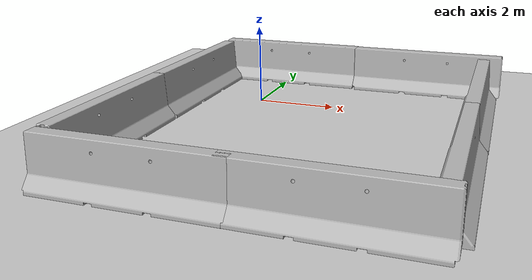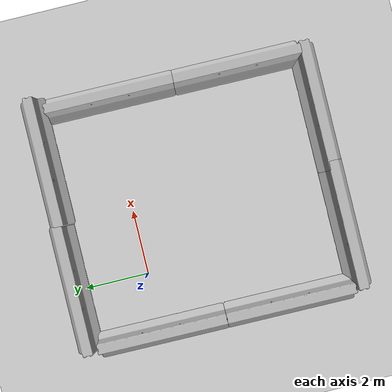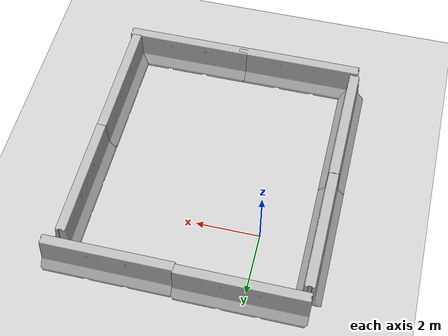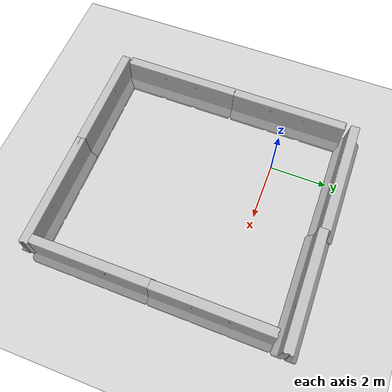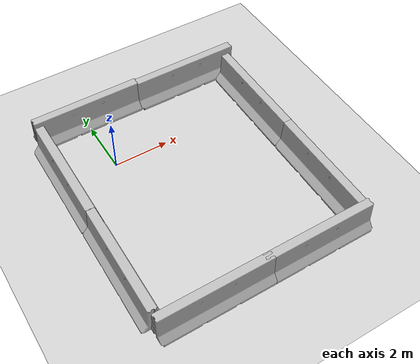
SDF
<sdf version="1.6">
 <world name="default">
  <model name="ground_plane">
   <static>1</static>
   <link name="link">
    <collision name="collision">
     <geometry><plane><normal>0 0 1</normal><size>100 100</size></plane></geometry>
     <surface><friction><ode><mu>100</mu><mu2>50</mu2></ode></friction></surface>
    </collision>
    <visual name="visual">
     <cast_shadows>0</cast_shadows>
     <geometry><plane><normal>0 0 1</normal><size>100 100</size></plane></geometry>
     <material>
      <script><uri>file://media/materials/scripts/gazebo.material</uri><name>Gazebo/Grey</name></script>
     </material>
    </visual>
   </link>
  </model>
  <light name="sun" type="directional">
   <pose>0 0 10 0 -0 0</pose>
   <diffuse>0.8 0.8 0.8 1</diffuse>
   <specular>0.1 0.1 0.1 1</specular>
   <attenuation>
    <range>1000</range>
    <constant>0.9</constant>
    <linear>0.01</linear>
    <quadratic>0.001</quadratic>
   </attenuation>
   <direction>-0.5 0.5 -1</direction>
  </light>
  <gravity>0 0 -9.8</gravity>
  <magnetic_field>6e-06 2.3e-05 -4.2e-05</magnetic_field>
  <atmosphere type="adiabatic"/>
  <physics name="default_physics" default="0" type="ode">
   <max_step_size>0.001</max_step_size>
   <real_time_factor>1</real_time_factor>
   <real_time_update_rate>1000</real_time_update_rate>
  </physics>
  <scene><ambient>0.4 0.4 0.4 1</ambient><background>0.7 0.7 0.7 1</background><shadows>1</shadows></scene>
  <spherical_coordinates>
   <surface_model>EARTH_WGS84</surface_model>
   <latitude_deg>0</latitude_deg>
   <longitude_deg>0</longitude_deg>
   <elevation>0</elevation>
   <heading_deg>0</heading_deg>
  </spherical_coordinates>
  <model name="jersey_barrier">
   <static>1</static>
   <link name="link">
    <visual name="visual">
     <geometry>
      <mesh><uri>model://jersey_barrier/meshes/jersey_barrier.dae</uri><scale>1 1 1</scale></mesh>
     </geometry>
    </visual>
    <collision name="upright">
     <pose>0 0 0.5715 0 -0 0</pose>
     <geometry><box><size>4.06542 0.3063 1.143</size></box></geometry>
    </collision>
    <collision name="base">
     <pose>0 0 0.032258 0 -0 0</pose>
     <geometry><box><size>4.06542 0.8107 0.064516</size></box></geometry>
    </collision>
    <collision name="base2">
     <pose>0 0 0.1 0 -0 0</pose>
     <geometry><box><size>4.06542 0.65 0.1</size></box></geometry>
    </collision>
    <collision name="base3">
     <pose>0 0 0.2 0 -0 0</pose>
     <geometry><box><size>4.06542 0.5 0.1</size></box></geometry>
    </collision>
    <collision name="left-angle">
     <pose>0 -0.224 0.2401 0.9 -0 0</pose>
     <geometry><box><size>4.06542 0.5 0.064516</size></box></geometry>
    </collision>
    <collision name="right-angle">
     <pose>0 0.224 0.2401 -0.9 0 0</pose>
     <geometry><box><size>4.06542 0.5 0.064516</size></box></geometry>
    </collision>
   </link>
   <pose>0.081075 2.30231 0 0 -0 0</pose>
  </model>
  <model name="jersey_barrier_clone">
   <static>1</static>
   <link name="link">
    <visual name="visual">
     <geometry>
      <mesh><uri>model://jersey_barrier/meshes/jersey_barrier.dae</uri><scale>1 1 1</scale></mesh>
     </geometry>
    </visual>
    <collision name="upright">
     <pose>0 0 0.5715 0 -0 0</pose>
     <geometry><box><size>4.06542 0.3063 1.143</size></box></geometry>
    </collision>
    <collision name="base">
     <pose>0 0 0.032258 0 -0 0</pose>
     <geometry><box><size>4.06542 0.8107 0.064516</size></box></geometry>
    </collision>
    <collision name="base2">
     <pose>0 0 0.1 0 -0 0</pose>
     <geometry><box><size>4.06542 0.65 0.1</size></box></geometry>
    </collision>
    <collision name="base3">
     <pose>0 0 0.2 0 -0 0</pose>
     <geometry><box><size>4.06542 0.5 0.1</size></box></geometry>
    </collision>
    <collision name="left-angle">
     <pose>0 -0.224 0.2401 0.9 -0 0</pose>
     <geometry><box><size>4.06542 0.5 0.064516</size></box></geometry>
    </collision>
    <collision name="right-angle">
     <pose>0 0.224 0.2401 -0.9 0 0</pose>
     <geometry><box><size>4.06542 0.5 0.064516</size></box></geometry>
    </collision>
   </link>
   <pose>4.09144 2.24464 0 0 -0 0</pose>
  </model>
  <model name="jersey_barrier_clone_0">
   <static>1</static>
   <link name="link">
    <visual name="visual">
     <geometry>
      <mesh><uri>model://jersey_barrier/meshes/jersey_barrier.dae</uri><scale>1 1 1</scale></mesh>
     </geometry>
    </visual>
    <collision name="upright">
     <pose>0 0 0.5715 0 -0 0</pose>
     <geometry><box><size>4.06542 0.3063 1.143</size></box></geometry>
    </collision>
    <collision name="base">
     <pose>0 0 0.032258 0 -0 0</pose>
     <geometry><box><size>4.06542 0.8107 0.064516</size></box></geometry>
    </collision>
    <collision name="base2">
     <pose>0 0 0.1 0 -0 0</pose>
     <geometry><box><size>4.06542 0.65 0.1</size></box></geometry>
    </collision>
    <collision name="base3">
     <pose>0 0 0.2 0 -0 0</pose>
     <geometry><box><size>4.06542 0.5 0.1</size></box></geometry>
    </collision>
    <collision name="left-angle">
     <pose>0 -0.224 0.2401 0.9 -0 0</pose>
     <geometry><box><size>4.06542 0.5 0.064516</size></box></geometry>
    </collision>
    <collision name="right-angle">
     <pose>0 0.224 0.2401 -0.9 0 0</pose>
     <geometry><box><size>4.06542 0.5 0.064516</size></box></geometry>
    </collision>
   </link>
   <pose>5.64247 -0.18421 0 0 0 -1.57667</pose>
  </model>
  <model name="jersey_barrier_clone_0_clone">
   <static>1</static>
   <link name="link">
    <visual name="visual">
     <geometry>
      <mesh><uri>model://jersey_barrier/meshes/jersey_barrier.dae</uri><scale>1 1 1</scale></mesh>
     </geometry>
    </visual>
    <collision name="upright">
     <pose>0 0 0.5715 0 -0 0</pose>
     <geometry><box><size>4.06542 0.3063 1.143</size></box></geometry>
    </collision>
    <collision name="base">
     <pose>0 0 0.032258 0 -0 0</pose>
     <geometry><box><size>4.06542 0.8107 0.064516</size></box></geometry>
    </collision>
    <collision name="base2">
     <pose>0 0 0.1 0 -0 0</pose>
     <geometry><box><size>4.06542 0.65 0.1</size></box></geometry>
    </collision>
    <collision name="base3">
     <pose>0 0 0.2 0 -0 0</pose>
     <geometry><box><size>4.06542 0.5 0.1</size></box></geometry>
    </collision>
    <collision name="left-angle">
     <pose>0 -0.224 0.2401 0.9 -0 0</pose>
     <geometry><box><size>4.06542 0.5 0.064516</size></box></geometry>
    </collision>
    <collision name="right-angle">
     <pose>0 0.224 0.2401 -0.9 0 0</pose>
     <geometry><box><size>4.06542 0.5 0.064516</size></box></geometry>
    </collision>
   </link>
   <pose>5.6117 -4.18464 0 0 0 -1.57667</pose>
  </model>
  <model name="jersey_barrier_clone_0_clone_0">
   <static>1</static>
   <link name="link">
    <visual name="visual">
     <geometry>
      <mesh><uri>model://jersey_barrier/meshes/jersey_barrier.dae</uri><scale>1 1 1</scale></mesh>
     </geometry>
    </visual>
    <collision name="upright">
     <pose>0 0 0.5715 0 -0 0</pose>
     <geometry><box><size>4.06542 0.3063 1.143</size></box></geometry>
    </collision>
    <collision name="base">
     <pose>0 0 0.032258 0 -0 0</pose>
     <geometry><box><size>4.06542 0.8107 0.064516</size></box></geometry>
    </collision>
    <collision name="base2">
     <pose>0 0 0.1 0 -0 0</pose>
     <geometry><box><size>4.06542 0.65 0.1</size></box></geometry>
    </collision>
    <collision name="base3">
     <pose>0 0 0.2 0 -0 0</pose>
     <geometry><box><size>4.06542 0.5 0.1</size></box></geometry>
    </collision>
    <collision name="left-angle">
     <pose>0 -0.224 0.2401 0.9 -0 0</pose>
     <geometry><box><size>4.06542 0.5 0.064516</size></box></geometry>
    </collision>
    <collision name="right-angle">
     <pose>0 0.224 0.2401 -0.9 0 0</pose>
     <geometry><box><size>4.06542 0.5 0.064516</size></box></geometry>
    </collision>
   </link>
   <pose>-1.8333 -0.041317 0 0 0 -1.57667</pose>
  </model>
  <model name="jersey_barrier_clone_0_clone_1">
   <static>1</static>
   <link name="link">
    <visual name="visual">
     <geometry>
      <mesh><uri>model://jersey_barrier/meshes/jersey_barrier.dae</uri><scale>1 1 1</scale></mesh>
     </geometry>
    </visual>
    <collision name="upright">
     <pose>0 0 0.5715 0 -0 0</pose>
     <geometry><box><size>4.06542 0.3063 1.143</size></box></geometry>
    </collision>
    <collision name="base">
     <pose>0 0 0.032258 0 -0 0</pose>
     <geometry><box><size>4.06542 0.8107 0.064516</size></box></geometry>
    </collision>
    <collision name="base2">
     <pose>0 0 0.1 0 -0 0</pose>
     <geometry><box><size>4.06542 0.65 0.1</size></box></geometry>
    </collision>
    <collision name="base3">
     <pose>0 0 0.2 0 -0 0</pose>
     <geometry><box><size>4.06542 0.5 0.1</size></box></geometry>
    </collision>
    <collision name="left-angle">
     <pose>0 -0.224 0.2401 0.9 -0 0</pose>
     <geometry><box><size>4.06542 0.5 0.064516</size></box></geometry>
    </collision>
    <collision name="right-angle">
     <pose>0 0.224 0.2401 -0.9 0 0</pose>
     <geometry><box><size>4.06542 0.5 0.064516</size></box></geometry>
    </collision>
   </link>
   <pose>-1.85423 -4.06522 0 0 0 -1.57667</pose>
  </model>
  <model name="jersey_barrier_clone_1">
   <static>1</static>
   <link name="link">
    <visual name="visual">
     <geometry>
      <mesh><uri>model://jersey_barrier/meshes/jersey_barrier.dae</uri><scale>1 1 1</scale></mesh>
     </geometry>
    </visual>
    <collision name="upright">
     <pose>0 0 0.5715 0 -0 0</pose>
     <geometry><box><size>4.06542 0.3063 1.143</size></box></geometry>
    </collision>
    <collision name="base">
     <pose>0 0 0.032258 0 -0 0</pose>
     <geometry><box><size>4.06542 0.8107 0.064516</size></box></geometry>
    </collision>
    <collision name="base2">
     <pose>0 0 0.1 0 -0 0</pose>
     <geometry><box><size>4.06542 0.65 0.1</size></box></geometry>
    </collision>
    <collision name="base3">
     <pose>0 0 0.2 0 -0 0</pose>
     <geometry><box><size>4.06542 0.5 0.1</size></box></geometry>
    </collision>
    <collision name="left-angle">
     <pose>0 -0.224 0.2401 0.9 -0 0</pose>
     <geometry><box><size>4.06542 0.5 0.064516</size></box></geometry>
    </collision>
    <collision name="right-angle">
     <pose>0 0.224 0.2401 -0.9 0 0</pose>
     <geometry><box><size>4.06542 0.5 0.064516</size></box></geometry>
    </collision>
   </link>
   <pose>0.059991 -6.32073 0 0 -0 0</pose>
  </model>
  <model name="jersey_barrier_clone_2">
   <static>1</static>
   <link name="link">
    <visual name="visual">
     <geometry>
      <mesh><uri>model://jersey_barrier/meshes/jersey_barrier.dae</uri><scale>1 1 1</scale></mesh>
     </geometry>
    </visual>
    <collision name="upright">
     <pose>0 0 0.5715 0 -0 0</pose>
     <geometry><box><size>4.06542 0.3063 1.143</size></box></geometry>
    </collision>
    <collision name="base">
     <pose>0 0 0.032258 0 -0 0</pose>
     <geometry><box><size>4.06542 0.8107 0.064516</size></box></geometry>
    </collision>
    <collision name="base2">
     <pose>0 0 0.1 0 -0 0</pose>
     <geometry><box><size>4.06542 0.65 0.1</size></box></geometry>
    </collision>
    <collision name="base3">
     <pose>0 0 0.2 0 -0 0</pose>
     <geometry><box><size>4.06542 0.5 0.1</size></box></geometry>
    </collision>
    <collision name="left-angle">
     <pose>0 -0.224 0.2401 0.9 -0 0</pose>
     <geometry><box><size>4.06542 0.5 0.064516</size></box></geometry>
    </collision>
    <collision name="right-angle">
     <pose>0 0.224 0.2401 -0.9 0 0</pose>
     <geometry><box><size>4.06542 0.5 0.064516</size></box></geometry>
    </collision>
   </link>
   <pose>3.79142 -6.31941 0 0 -0 0</pose>
  </model>
 </world>
</sdf>
